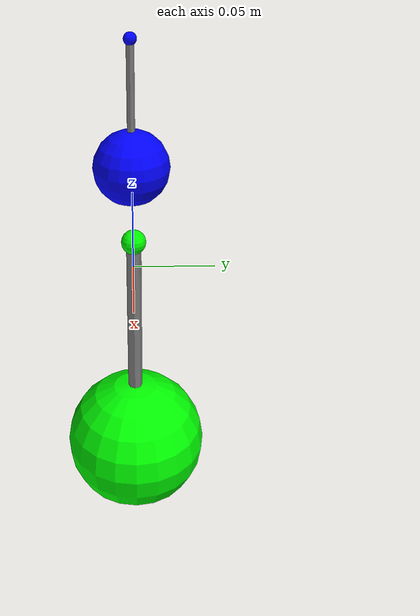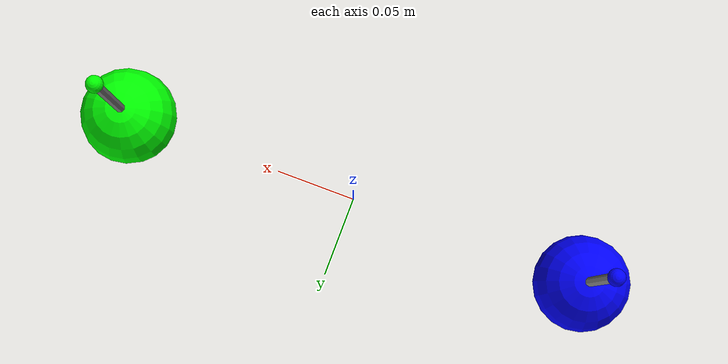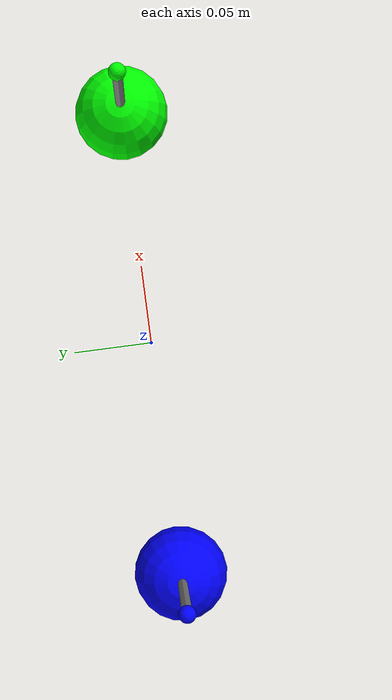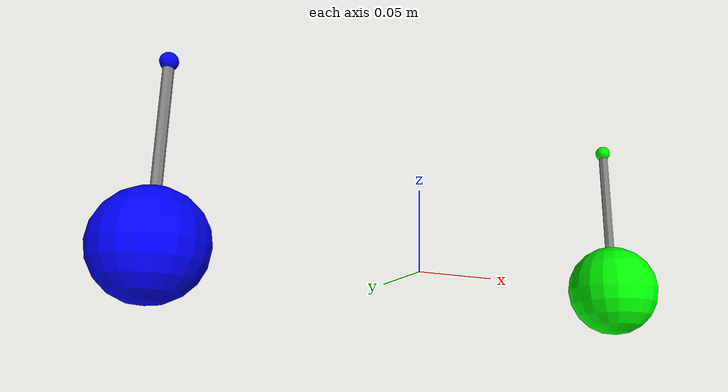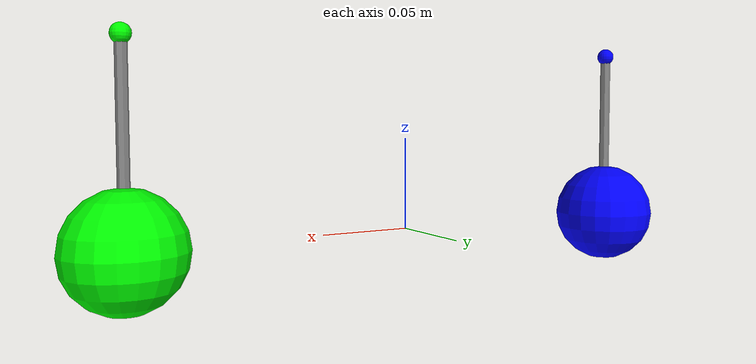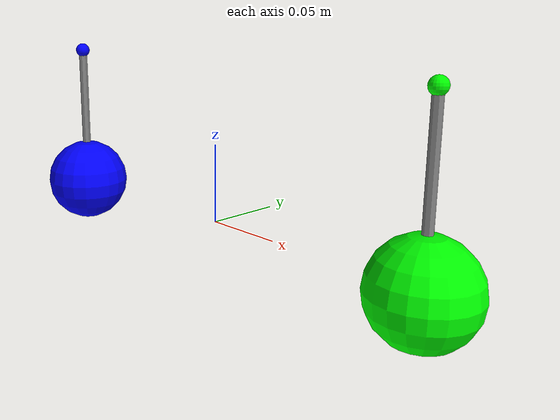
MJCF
<mujoco model="standard_muscle_test">
  <option timestep="0.0001" gravity="0 0 -9.81"/>

  <default>
    <default class="muscle">
      <general biasprm="0.75 1.05 -1 400 0.5 1.6 1.5 1.3 1.2 0" biastype="muscle" ctrllimited="true" ctrlrange="0 1" dynprm="0.01 0.04 0 0 0 0 0 0 0 0" dyntype="muscle" gainprm="0.75 1.05 -1 400 0.5 1.6 1.5 1.3 1.2 0" gaintype="muscle"/>
    </default>
  </default>

  <worldbody>
    <body name="ground"/>

    <!-- Compliant tendon pendulum (left) -->

    <!-- Rigid tendon (non-compliant) pendulum (right) -->

    <!-- Fixed anchor sites for tendons -->
    <site name="fixed_c" pos="-0.15 0 0.1" size="0.005" rgba="0 0 1 1"/>
    <site name="fixed_r" pos="0.15 0 0.1" size="0.005" rgba="0 1 0 1"/>

    <!-- Point masses to be pulled by muscles -->
    <body name="mass_c" pos="-0.15 0 0">
      <joint name="slide_c" type="slide" axis="0 0 1" limited="false" range="-1 0.0" damping="2"/>
      <site name="mass_c_site" pos="0 0 0" size="0.005" rgba="0 0 1 1"/>
      <geom type="sphere" size="0.03" mass="1.0" rgba="0 0 1 1"/>
    </body>
    <body name="mass_r" pos="0.15 0 0">
      <joint name="slide_r" type="slide" axis="0 0 1" limited="false" range="-1 0.0" damping="2"/>
      <site name="mass_r_site" pos="0 0 0" size="0.005" rgba="0 1 0 1"/>
      <geom type="sphere" size="0.03" mass="1.0" rgba="0 1 0 1"/>
    </body>
  </worldbody>

  <!-- Tendon paths for muscles: fixed anchor to point mass site -->
  <tendon>
    <spatial name="tendon_c">
      <site site="fixed_c"/>
      <site site="mass_c_site"/>
    </spatial>
    <spatial name="tendon_r">
      <site site="fixed_r"/>
      <site site="mass_r_site"/>
    </spatial>
  </tendon>

  <actuator>
    <!-- Standard MuJoCo muscle pulling left point mass -->
    <muscle class="muscle" name="muscle_c" tendon="tendon_c"
            lengthrange="0.05 0.5"/>

    <!-- Standard MuJoCo muscle pulling right point mass -->
    <muscle class="muscle" name="muscle_r" tendon="tendon_r"
            lengthrange="0.05 0.5"/>
  </actuator>

  <sensor>
    <tendonpos name="len_c" tendon="tendon_c"/>
    <tendonpos name="len_r" tendon="tendon_r"/>
    <actuatorfrc name="frc_c" actuator="muscle_c"/>
    <actuatorfrc name="frc_r" actuator="muscle_r"/>
  </sensor>
</mujoco>
